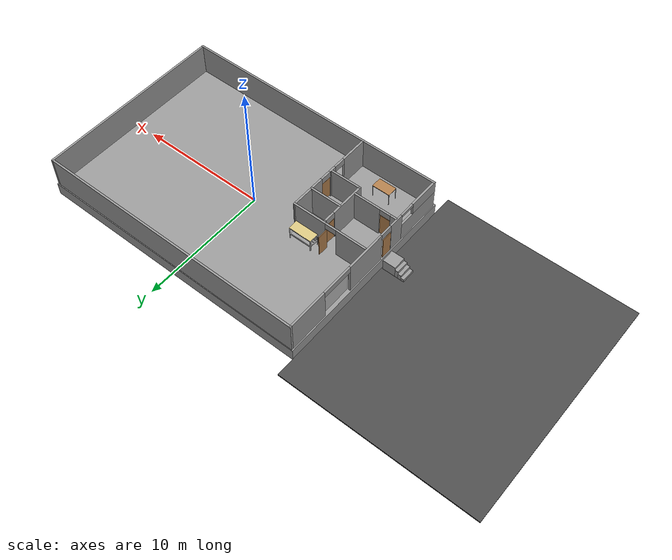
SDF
<sdf version="1.6">
 <world name="default">
  <gravity>0 0 -9.8</gravity>
  <atmosphere type="adiabatic"/>
  <physics name="default_physics" default="0" type="ode">
   <max_step_size>0.001</max_step_size>
   <real_time_factor>1</real_time_factor>
   <real_time_update_rate>1000</real_time_update_rate>
  </physics>
  <scene><ambient>0.4 0.4 0.4 1</ambient><background>0.7 0.7 0.7 1</background><shadows>0</shadows></scene>
  <model name="Small Warehouse">
   <pose>0.283 0.657 0.95 0 -0 0</pose>
   <link name="Wall_0">
    <collision name="Wall_0_Collision">
     <geometry><box><size>21.25 0.15 2.5</size></box></geometry>
     <pose>0 0 1.25 0 -0 0</pose>
    </collision>
    <visual name="Wall_0_Visual">
     <pose>0 0 1.25 0 -0 0</pose>
     <geometry><box><size>21.25 0.15 2.5</size></box></geometry>
     <material>
      <script><uri>file://media/materials/scripts/gazebo.material</uri><name>Gazebo/Grey</name></script>
      <ambient>1 1 1 1</ambient>
     </material>
    </visual>
    <pose>0 7.3 0 0 -0 3.14159</pose>
   </link>
   <link name="Wall_1">
    <pose>-10.55 0 0 0 0 -1.5708</pose>
    <visual name="Wall_1_Visual_0">
     <pose>-5.75457 0 1.25 0 -0 0</pose>
     <geometry><box><size>3.24086 0.15 2.5</size></box></geometry>
     <material>
      <script><uri>file://media/materials/scripts/gazebo.material</uri><name>Gazebo/Grey</name></script>
      <ambient>1 1 1 1</ambient>
     </material>
    </visual>
    <collision name="Wall_1_Collision_0">
     <geometry><box><size>3.24086 0.15 2.5</size></box></geometry>
     <pose>-5.75457 0 1.25 0 -0 0</pose>
    </collision>
    <visual name="Wall_1_Visual_1">
     <pose>-0.038492 0 1.25 0 -0 0</pose>
     <geometry><box><size>3.1913 0.15 2.5</size></box></geometry>
     <material>
      <script><uri>file://media/materials/scripts/gazebo.material</uri><name>Gazebo/Grey</name></script>
      <ambient>1 1 1 1</ambient>
     </material>
    </visual>
    <collision name="Wall_1_Collision_1">
     <geometry><box><size>3.1913 0.15 2.5</size></box></geometry>
     <pose>-0.038492 0 1.25 0 -0 0</pose>
    </collision>
    <visual name="Wall_1_Visual_2">
     <pose>3.12746 0 1.25 0 -0 0</pose>
     <geometry><box><size>1.1406 0.15 2.5</size></box></geometry>
     <material>
      <script><uri>file://media/materials/scripts/gazebo.material</uri><name>Gazebo/Grey</name></script>
      <ambient>1 1 1 1</ambient>
     </material>
    </visual>
    <collision name="Wall_1_Collision_2">
     <geometry><box><size>1.1406 0.15 2.5</size></box></geometry>
     <pose>3.12746 0 1.25 0 -0 0</pose>
    </collision>
    <visual name="Wall_1_Visual_3">
     <pose>5.53638 0 0.75 0 -0 0</pose>
     <geometry><box><size>3.67724 0.15 1.5</size></box></geometry>
     <material>
      <script><uri>file://media/materials/scripts/gazebo.material</uri><name>Gazebo/Grey</name></script>
      <ambient>1 1 1 1</ambient>
     </material>
    </visual>
    <collision name="Wall_1_Collision_3">
     <geometry><box><size>3.67724 0.15 1.5</size></box></geometry>
     <pose>5.53638 0 0.75 0 -0 0</pose>
    </collision>
    <visual name="Wall_1_Visual_4">
     <pose>6.13638 0 2 0 -0 0</pose>
     <geometry><box><size>2.47724 0.15 1</size></box></geometry>
     <material>
      <script><uri>file://media/materials/scripts/gazebo.material</uri><name>Gazebo/Grey</name></script>
      <ambient>1 1 1 1</ambient>
     </material>
    </visual>
    <collision name="Wall_1_Collision_4">
     <geometry><box><size>2.47724 0.15 1</size></box></geometry>
     <pose>6.13638 0 2 0 -0 0</pose>
    </collision>
    <visual name="Wall_1_Visual_5">
     <pose>-2.88414 0 2.25 0 -0 0</pose>
     <geometry><box><size>2.5 0.15 0.5</size></box></geometry>
     <material>
      <script><uri>file://media/materials/scripts/gazebo.material</uri><name>Gazebo/Grey</name></script>
      <ambient>1 1 1 1</ambient>
     </material>
    </visual>
    <collision name="Wall_1_Collision_5">
     <geometry><box><size>2.5 0.15 0.5</size></box></geometry>
     <pose>-2.88414 0 2.25 0 -0 0</pose>
    </collision>
    <visual name="Wall_1_Visual_6">
     <pose>2.05716 0 2.25 0 -0 0</pose>
     <geometry><box><size>1 0.15 0.5</size></box></geometry>
     <material>
      <script><uri>file://media/materials/scripts/gazebo.material</uri><name>Gazebo/Grey</name></script>
      <ambient>1 1 1 1</ambient>
     </material>
    </visual>
    <collision name="Wall_1_Collision_6">
     <geometry><box><size>1 0.15 0.5</size></box></geometry>
     <pose>2.05716 0 2.25 0 -0 0</pose>
    </collision>
    <visual name="Wall_1_Visual_7">
     <pose>4.29776 0 2.4 0 -0 0</pose>
     <geometry><box><size>1.2 0.15 0.2</size></box></geometry>
     <material>
      <script><uri>file://media/materials/scripts/gazebo.material</uri><name>Gazebo/Grey</name></script>
      <ambient>1 1 1 1</ambient>
     </material>
    </visual>
    <collision name="Wall_1_Collision_7">
     <geometry><box><size>1.2 0.15 0.2</size></box></geometry>
     <pose>4.29776 0 2.4 0 -0 0</pose>
    </collision>
   </link>
   <link name="Wall_2">
    <collision name="Wall_2_Collision">
     <geometry><box><size>21.25 0.15 2.5</size></box></geometry>
     <pose>0 0 1.25 0 -0 0</pose>
    </collision>
    <visual name="Wall_2_Visual">
     <pose>0 0 1.25 0 -0 0</pose>
     <geometry><box><size>21.25 0.15 2.5</size></box></geometry>
     <material>
      <script><uri>file://media/materials/scripts/gazebo.material</uri><name>Gazebo/Grey</name></script>
      <ambient>1 1 1 1</ambient>
     </material>
    </visual>
    <pose>0 -7.3 0 0 -0 0</pose>
   </link>
   <link name="Wall_22">
    <pose>-7.48562 -0.099249 0 0 0 -3.14158</pose>
    <visual name="Wall_22_Visual_0">
     <pose>-1.6525 0 1.25 0 -0 0</pose>
     <geometry><box><size>2.67098 0.15 2.5</size></box></geometry>
     <material>
      <script><uri>file://media/materials/scripts/gazebo.material</uri><name>Gazebo/Grey</name></script>
      <ambient>1 1 1 1</ambient>
     </material>
    </visual>
    <collision name="Wall_22_Collision_0">
     <geometry><box><size>2.67098 0.15 2.5</size></box></geometry>
     <pose>-1.6525 0 1.25 0 -0 0</pose>
    </collision>
    <visual name="Wall_22_Visual_1">
     <pose>1.78549 0 1.25 0 -0 0</pose>
     <geometry><box><size>2.40501 0.15 2.5</size></box></geometry>
     <material>
      <script><uri>file://media/materials/scripts/gazebo.material</uri><name>Gazebo/Grey</name></script>
      <ambient>1 1 1 1</ambient>
     </material>
    </visual>
    <collision name="Wall_22_Collision_1">
     <geometry><box><size>2.40501 0.15 2.5</size></box></geometry>
     <pose>1.78549 0 1.25 0 -0 0</pose>
    </collision>
    <visual name="Wall_22_Visual_2">
     <pose>0.132986 0 2.25 0 -0 0</pose>
     <geometry><box><size>0.9 0.15 0.5</size></box></geometry>
     <material>
      <script><uri>file://media/materials/scripts/gazebo.material</uri><name>Gazebo/Grey</name></script>
      <ambient>1 1 1 1</ambient>
     </material>
    </visual>
    <collision name="Wall_22_Collision_2">
     <geometry><box><size>0.9 0.15 0.5</size></box></geometry>
     <pose>0.132986 0 2.25 0 -0 0</pose>
    </collision>
   </link>
   <link name="Wall_26">
    <pose>-4.57263 -3.64921 0 0 0 -1.5708</pose>
    <visual name="Wall_26_Visual_0">
     <pose>-2.22824 0 1.25 0 -0 0</pose>
     <geometry><box><size>2.79352 0.15 2.5</size></box></geometry>
     <material>
      <script><uri>file://media/materials/scripts/gazebo.material</uri><name>Gazebo/Grey</name></script>
      <ambient>1 1 1 1</ambient>
     </material>
    </visual>
    <collision name="Wall_26_Collision_0">
     <geometry><box><size>2.79352 0.15 2.5</size></box></geometry>
     <pose>-2.22824 0 1.25 0 -0 0</pose>
    </collision>
    <visual name="Wall_26_Visual_1">
     <pose>0.30227 0 1.25 0 -0 0</pose>
     <geometry><box><size>0.5675 0.15 2.5</size></box></geometry>
     <material>
      <script><uri>file://media/materials/scripts/gazebo.material</uri><name>Gazebo/Grey</name></script>
      <ambient>1 1 1 1</ambient>
     </material>
    </visual>
    <collision name="Wall_26_Collision_1">
     <geometry><box><size>0.5675 0.15 2.5</size></box></geometry>
     <pose>0.30227 0 1.25 0 -0 0</pose>
    </collision>
    <visual name="Wall_26_Visual_2">
     <pose>2.55551 0 1.25 0 -0 0</pose>
     <geometry><box><size>2.13898 0.15 2.5</size></box></geometry>
     <material>
      <script><uri>file://media/materials/scripts/gazebo.material</uri><name>Gazebo/Grey</name></script>
      <ambient>1 1 1 1</ambient>
     </material>
    </visual>
    <collision name="Wall_26_Collision_2">
     <geometry><box><size>2.13898 0.15 2.5</size></box></geometry>
     <pose>2.55551 0 1.25 0 -0 0</pose>
    </collision>
    <visual name="Wall_26_Visual_3">
     <pose>-0.40648 0 2.25 0 -0 0</pose>
     <geometry><box><size>0.85 0.15 0.5</size></box></geometry>
     <material>
      <script><uri>file://media/materials/scripts/gazebo.material</uri><name>Gazebo/Grey</name></script>
      <ambient>1 1 1 1</ambient>
     </material>
    </visual>
    <collision name="Wall_26_Collision_3">
     <geometry><box><size>0.85 0.15 0.5</size></box></geometry>
     <pose>-0.40648 0 2.25 0 -0 0</pose>
    </collision>
    <visual name="Wall_26_Visual_4">
     <pose>1.03602 0 2.25 0 -0 0</pose>
     <geometry><box><size>0.9 0.15 0.5</size></box></geometry>
     <material>
      <script><uri>file://media/materials/scripts/gazebo.material</uri><name>Gazebo/Grey</name></script>
      <ambient>1 1 1 1</ambient>
     </material>
    </visual>
    <collision name="Wall_26_Collision_4">
     <geometry><box><size>0.9 0.15 0.5</size></box></geometry>
     <pose>1.03602 0 2.25 0 -0 0</pose>
    </collision>
   </link>
   <link name="Wall_35">
    <collision name="Wall_35_Collision">
     <geometry><box><size>2.5 0.15 2.5</size></box></geometry>
     <pose>0 0 1.25 0 -0 0</pose>
    </collision>
    <visual name="Wall_35_Visual">
     <pose>0 0 1.25 0 -0 0</pose>
     <geometry><box><size>2.5 0.15 2.5</size></box></geometry>
     <material>
      <script><uri>file://media/materials/scripts/gazebo.material</uri><name>Gazebo/Grey</name></script>
      <ambient>1 1 1 1</ambient>
     </material>
    </visual>
    <pose>-5.78333 -1.81261 0 0 -0 0</pose>
   </link>
   <link name="Wall_38">
    <collision name="Wall_38_Collision">
     <geometry><box><size>2.5 0.15 2.5</size></box></geometry>
     <pose>0 0 1.25 0 -0 0</pose>
    </collision>
    <visual name="Wall_38_Visual">
     <pose>0 0 1.25 0 -0 0</pose>
     <geometry><box><size>2.5 0.15 2.5</size></box></geometry>
     <material>
      <script><uri>file://media/materials/scripts/gazebo.material</uri><name>Gazebo/Grey</name></script>
      <ambient>1 1 1 1</ambient>
     </material>
    </visual>
    <pose>-5.84141 -3.8333 0 0 -0 0</pose>
   </link>
   <link name="Wall_4">
    <collision name="Wall_4_Collision">
     <geometry><box><size>14.75 0.15 2.5</size></box></geometry>
     <pose>0 0 1.25 0 -0 0</pose>
    </collision>
    <visual name="Wall_4_Visual">
     <pose>0 0 1.25 0 -0 0</pose>
     <geometry><box><size>14.75 0.15 2.5</size></box></geometry>
     <material>
      <script><uri>file://media/materials/scripts/gazebo.material</uri><name>Gazebo/Grey</name></script>
      <ambient>1 1 1 1</ambient>
     </material>
    </visual>
    <pose>10.55 0 0 0 -0 1.5708</pose>
   </link>
   <link name="Wall_40">
    <pose>-7.01642 -2.0333 0 0 -0 1.5708</pose>
    <visual name="Wall_40_Visual_0">
     <pose>-0.477182 0 1.25 0 -0 0</pose>
     <geometry><box><size>2.79563 0.15 2.5</size></box></geometry>
     <material>
      <script><uri>file://media/materials/scripts/gazebo.material</uri><name>Gazebo/Grey</name></script>
      <ambient>1 1 1 1</ambient>
     </material>
    </visual>
    <collision name="Wall_40_Collision_0">
     <geometry><box><size>2.79563 0.15 2.5</size></box></geometry>
     <pose>-0.477182 0 1.25 0 -0 0</pose>
    </collision>
    <visual name="Wall_40_Visual_1">
     <pose>1.82282 0 1.25 0 -0 0</pose>
     <geometry><box><size>0.104365 0.15 2.5</size></box></geometry>
     <material>
      <script><uri>file://media/materials/scripts/gazebo.material</uri><name>Gazebo/Grey</name></script>
      <ambient>1 1 1 1</ambient>
     </material>
    </visual>
    <collision name="Wall_40_Collision_1">
     <geometry><box><size>0.104365 0.15 2.5</size></box></geometry>
     <pose>1.82282 0 1.25 0 -0 0</pose>
    </collision>
    <visual name="Wall_40_Visual_2">
     <pose>1.34563 0 2.25 0 -0 0</pose>
     <geometry><box><size>0.85 0.15 0.5</size></box></geometry>
     <material>
      <script><uri>file://media/materials/scripts/gazebo.material</uri><name>Gazebo/Grey</name></script>
      <ambient>1 1 1 1</ambient>
     </material>
    </visual>
    <collision name="Wall_40_Collision_2">
     <geometry><box><size>0.85 0.15 0.5</size></box></geometry>
     <pose>1.34563 0 2.25 0 -0 0</pose>
    </collision>
   </link>
   <link name="Wall_42">
    <pose>-8.79502 -3.24499 0 0 -0 0</pose>
    <visual name="Wall_42_Visual_0">
     <pose>-1.49076 0 1.25 0 -0 0</pose>
     <geometry><box><size>0.518479 0.15 2.5</size></box></geometry>
     <material>
      <script><uri>file://media/materials/scripts/gazebo.material</uri><name>Gazebo/Grey</name></script>
      <ambient>1 1 1 1</ambient>
     </material>
    </visual>
    <collision name="Wall_42_Collision_0">
     <geometry><box><size>0.518479 0.15 2.5</size></box></geometry>
     <pose>-1.49076 0 1.25 0 -0 0</pose>
    </collision>
    <visual name="Wall_42_Visual_1">
     <pose>0.684239 0 1.25 0 -0 0</pose>
     <geometry><box><size>2.13152 0.15 2.5</size></box></geometry>
     <material>
      <script><uri>file://media/materials/scripts/gazebo.material</uri><name>Gazebo/Grey</name></script>
      <ambient>1 1 1 1</ambient>
     </material>
    </visual>
    <collision name="Wall_42_Collision_1">
     <geometry><box><size>2.13152 0.15 2.5</size></box></geometry>
     <pose>0.684239 0 1.25 0 -0 0</pose>
    </collision>
    <visual name="Wall_42_Visual_2">
     <pose>-0.806521 0 2.25 0 -0 0</pose>
     <geometry><box><size>0.85 0.15 0.5</size></box></geometry>
     <material>
      <script><uri>file://media/materials/scripts/gazebo.material</uri><name>Gazebo/Grey</name></script>
      <ambient>1 1 1 1</ambient>
     </material>
    </visual>
    <collision name="Wall_42_Collision_2">
     <geometry><box><size>0.85 0.15 0.5</size></box></geometry>
     <pose>-0.806521 0 2.25 0 -0 0</pose>
    </collision>
   </link>
   <static>1</static>
  </model>
  <model name="asphalt_plane">
   <static>1</static>
   <link name="link">
    <collision name="collision"><geometry><box><size>15.0 18.0 0.1</size></box></geometry></collision>
    <visual name="visual">
     <cast_shadows>0</cast_shadows>
     <geometry><box><size>15.0 18.0 0.1</size></box></geometry>
     <material>
      <script>
       <uri>model://asphalt_plane/materials/scripts</uri>
       <uri>model://asphalt_plane/materials/textures</uri>
       <name>vrc/asphalt</name>
      </script>
     </material>
    </visual>
    <gravity>0</gravity>
   </link>
   <pose>-17.93 0.5 0 0 0 0</pose>
  </model>
  <light name="user_directional_light_0" type="directional">
   <pose>17.2332 3.09061 1 0 -0 0</pose>
   <diffuse>0.5 0.5 0.5 1</diffuse>
   <specular>0.1 0.1 0.1 1</specular>
   <direction>0.1 0.1 -0.9</direction>
   <attenuation>
    <range>20</range>
    <constant>0.5</constant>
    <linear>0.01</linear>
    <quadratic>0.001</quadratic>
   </attenuation>
  </light>
  <light name="user_directional_light_1" type="directional">
   <pose>14.9755 -9.82871 1 0 -0 0</pose>
   <diffuse>0.5 0.5 0.5 1</diffuse>
   <specular>0.1 0.1 0.1 1</specular>
   <direction>0.1 0.1 -0.9</direction>
   <attenuation>
    <range>20</range>
    <constant>0.5</constant>
    <linear>0.01</linear>
    <quadratic>0.001</quadratic>
   </attenuation>
  </light>
  <model name="landing">
   <static>1</static>
   <pose>-11 -1.43 0.5 0 -0 0</pose>
   <link name="link">
    <collision name="collision"><geometry><box><size>1 1 0.9</size></box></geometry></collision>
    <visual name="visual">
     <geometry><box><size>1 1 0.9</size></box></geometry>
     <material>
      <script><name>Gazebo/Grey</name><uri>file://media/materials/scripts/gazebo.material</uri></script>
     </material>
    </visual>
    <gravity>0</gravity>
   </link>
  </model>
  <model name="tall_step">
   <static>1</static>
   <pose>-11.625 -1.43 0.3875 0 -0 0</pose>
   <link name="link">
    <collision name="collision"><geometry><box><size>0.25 1 0.675</size></box></geometry></collision>
    <visual name="visual">
     <geometry><box><size>0.25 1 0.675</size></box></geometry>
     <material>
      <script><name>Gazebo/Grey</name><uri>file://media/materials/scripts/gazebo.material</uri></script>
     </material>
    </visual>
    <gravity>0</gravity>
   </link>
  </model>
  <model name="mid_step">
   <static>1</static>
   <pose>-11.875 -1.43 0.275 0 -0 0</pose>
   <link name="link">
    <collision name="collision"><geometry><box><size>0.25 1 0.45</size></box></geometry></collision>
    <visual name="visual">
     <geometry><box><size>0.25 1 0.45</size></box></geometry>
     <material>
      <script><name>Gazebo/Grey</name><uri>file://media/materials/scripts/gazebo.material</uri></script>
     </material>
    </visual>
    <gravity>0</gravity>
   </link>
  </model>
  <model name="short_step">
   <static>1</static>
   <pose>-12.125 -1.43 0.1625 0 -0 0</pose>
   <link name="link">
    <collision name="collision"><geometry><box><size>0.25 1 0.225</size></box></geometry></collision>
    <visual name="visual">
     <geometry><box><size>0.25 1 0.225</size></box></geometry>
     <material>
      <script><name>Gazebo/Grey</name><uri>file://media/materials/scripts/gazebo.material</uri></script>
     </material>
    </visual>
    <gravity>0</gravity>
   </link>
  </model>
  <model name="foundation">
   <link name="link">
    <pose>6.87194 9.07725 -0.026738 0 -0 0</pose>
    <visual name="visual">
     <geometry><box><size>21.4 15 1</size></box></geometry>
     <material>
      <script><name>Gazebo/Grey</name><uri>file://media/materials/scripts/gazebo.material</uri></script>
      <ambient>0.3 0.3 0.3 1</ambient>
      <diffuse>0.7 0.7 0.7 1</diffuse>
      <specular>0.01 0.01 0.01 1</specular>
      <emissive>0 0 0 1</emissive>
      <shader type="vertex"><normal_map>__default__</normal_map></shader>
     </material>
    </visual>
    <collision name="collision">
     <geometry><box><size>21.4 15 1</size></box></geometry>
     <surface>
      <friction>
       <ode><mu>1</mu><mu2>1</mu2><fdir1>0 0 0</fdir1><slip1>0</slip1><slip2>0</slip2></ode>
       <torsional>
        <coefficient>1</coefficient>
        <patch_radius>0</patch_radius>
        <surface_radius>0</surface_radius>
        <use_patch_radius>1</use_patch_radius>
        <ode><slip>0</slip></ode>
       </torsional>
      </friction>
      <bounce><restitution_coefficient>0</restitution_coefficient><threshold>1e+06</threshold></bounce>
      <contact>
       <collide_without_contact>0</collide_without_contact>
       <collide_without_contact_bitmask>1</collide_without_contact_bitmask>
       <collide_bitmask>1</collide_bitmask>
       <ode>
        <soft_cfm>0</soft_cfm>
        <soft_erp>0.2</soft_erp>
        <kp>1e+13</kp>
        <kd>1</kd>
        <max_vel>0.01</max_vel>
        <min_depth>0</min_depth>
       </ode>
       <bullet>
        <split_impulse>1</split_impulse>
        <split_impulse_penetration_threshold>-0.01</split_impulse_penetration_threshold>
        <soft_cfm>0</soft_cfm>
        <soft_erp>0.2</soft_erp>
        <kp>1e+13</kp>
        <kd>1</kd>
       </bullet>
      </contact>
     </surface>
    </collision>
    <gravity>0</gravity>
   </link>
   <static>1</static>
   <pose>-6.57046 -8.49807 0.484793 -6e-06 -0.003898 0.001481</pose>
  </model>
  <model name="table">
   <static>0</static>
   <link name="link">
    <collision name="surface">
     <pose>0 0 1 0 -0 0</pose>
     <geometry><box><size>1.5 0.8 0.03</size></box></geometry>
     <surface><friction><ode><mu>0.6</mu><mu2>0.6</mu2></ode></friction></surface>
    </collision>
    <visual name="visual1">
     <pose>0 0 1 0 -0 0</pose>
     <geometry><box><size>1.4 0.8 0.04</size></box></geometry>
     <material>
      <script><uri>file://media/materials/scripts/gazebo.material</uri><name>Gazebo/Wood</name></script>
     </material>
    </visual>
    <collision name="front_left_leg">
     <pose>0.68 0.38 0.5 0 -0 0</pose>
     <geometry><cylinder><radius>0.02</radius><length>1</length></cylinder></geometry>
    </collision>
    <visual name="front_left_leg">
     <pose>0.68 0.38 0.5 0 -0 0</pose>
     <geometry><cylinder><radius>0.02</radius><length>1</length></cylinder></geometry>
     <material>
      <script><uri>file://media/materials/scripts/gazebo.material</uri><name>Gazebo/Grey</name></script>
     </material>
    </visual>
    <collision name="front_right_leg">
     <pose>0.68 -0.38 0.5 0 -0 0</pose>
     <geometry><cylinder><radius>0.02</radius><length>1</length></cylinder></geometry>
    </collision>
    <visual name="front_right_leg">
     <pose>0.68 -0.38 0.5 0 -0 0</pose>
     <geometry><cylinder><radius>0.02</radius><length>1</length></cylinder></geometry>
     <material>
      <script><uri>file://media/materials/scripts/gazebo.material</uri><name>Gazebo/Grey</name></script>
     </material>
    </visual>
    <collision name="back_right_leg">
     <pose>-0.68 -0.38 0.5 0 -0 0</pose>
     <geometry><cylinder><radius>0.02</radius><length>1</length></cylinder></geometry>
    </collision>
    <visual name="back_right_leg">
     <pose>-0.68 -0.38 0.5 0 -0 0</pose>
     <geometry><cylinder><radius>0.02</radius><length>1</length></cylinder></geometry>
     <material>
      <script><uri>file://media/materials/scripts/gazebo.material</uri><name>Gazebo/Grey</name></script>
     </material>
    </visual>
    <collision name="back_left_leg">
     <pose>-0.68 0.38 0.5 0 -0 0</pose>
     <geometry><cylinder><radius>0.02</radius><length>1</length></cylinder></geometry>
    </collision>
    <visual name="back_left_leg">
     <pose>-0.68 0.38 0.5 0 -0 0</pose>
     <geometry><cylinder><radius>0.02</radius><length>1</length></cylinder></geometry>
     <material>
      <script><uri>file://media/materials/scripts/gazebo.material</uri><name>Gazebo/Grey</name></script>
     </material>
    </visual>
    <inertial>
     <inertia><ixx>1</ixx><ixy>0</ixy><ixz>0</ixz><iyy>1</iyy><iyz>0</iyz><izz>1</izz></inertia>
     <mass>1</mass>
    </inertial>
   </link>
   <pose>-7.25 -5.25 1 0 -0 0</pose>
  </model>
  <include><name>Bench</name><uri>model://bench</uri><pose>-5.45 1.12 1.94 0 -0 0</pose></include>
  <include>
   <name>Back Office Door</name>
   <uri>model://simpler_door</uri>
   <pose>-4.65 -3.63 0.95 0 0 0</pose>
  </include>
  <include>
   <name>Roller Door</name>
   <uri>model://roller_door</uri>
   <pose>-10.1 3.55 0.95 0 0 1.5707</pose>
  </include>
  <include>
   <name>Main Door</name>
   <uri>model://simpler_door</uri>
   <pose>-10.35 -1.43 0.95 0 0 -1.5707</pose>
  </include>
  <include>
   <name>Office Bathroom Door</name>
   <uri>model://simpler_door_z_minus</uri>
   <pose>-6.77 -0.02 .95 0 0 -1.5707</pose>
  </include>
  <include>
   <name>Front Office Door</name>
   <uri>model://simpler_door_z_minus</uri>
   <pose>-9.33 -2.58 0.95 0 0 -3.1415</pose>
  </include>
  <include>
   <name>Warehouse Bathroom Door</name>
   <uri>model://simpler_door_z_minus</uri>
   <pose>-4.29 -2.62 0.95 0 0 -1.5707</pose>
  </include>
  <include>
   <name>Reception Door</name>
   <uri>model://simpler_door</uri>
   <pose>-7 1 0.95 0 0 -1.57070</pose>
  </include>
 </world>
</sdf>

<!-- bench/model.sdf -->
<sdf version="1.5">
  <model name="bench">
    <link name="link">
      <pose>0 0 0 0 0 0</pose>
      <inertial>
        <mass>20.0</mass>
        <inertia>
          <ixx>2.43</ixx>
          <ixy>0</ixy>
          <ixz>0</ixz>
          <iyy>1.10</iyy>
          <iyz>0</iyz>
          <izz>3.47</izz>
        </inertia>
      </inertial>
      <collision name="collision">
        <pose>0 0 0.05 0 0 0</pose>
        <geometry>
          <mesh>
            <uri>model://bench/meshes/bench.dae</uri>
            <scale>1 1 1</scale>
          </mesh>
        </geometry>
      </collision>
      <visual name="visual">
        <pose>0 0 0.05 0 0 0</pose>
        <geometry>
          <mesh>
            <uri>model://bench/meshes/bench.dae</uri>
            <scale>1 1 1</scale>
          </mesh>
        </geometry>
      </visual>
    </link>
  </model>
</sdf>

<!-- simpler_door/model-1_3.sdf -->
<sdf version="1.3">
    <model name="simpler_door">
        <link name="door">
            <inertial>
                <pose>0 0 1.0 0 0 0</pose>
                <inertia>
                    <ixx>2.7</ixx>
                    <ixy>0</ixy>
                    <ixz>0</ixz>
                    <iyy>3.23</iyy>
                    <iyz>0</iyz>
                    <izz>0.53</izz>
                </inertia>
                <mass>10.0</mass>
            </inertial>
            <collision name="door_geom">
                <pose>0 0 1.0 0 0 0</pose>
                <geometry>
                    <box>
                        <size>0.8 0.05 1.8</size>
                    </box>
                </geometry>
            </collision>
            <visual name="door_geom_visual">
                <pose>0 0 1.0 0 0 0</pose>
                <geometry>
                    <box>
                        <size>0.8 0.05 1.8</size>
                    </box>
                </geometry>
                <material>
                    <script>
                        <uri>file://media/materials/scripts/gazebo.material</uri>
                        <name>Gazebo/Wood</name>
                    </script>
                </material>
            </visual>
        </link>

    <joint name="hinge" type="revolute">
      <parent>world</parent>
      <child>door</child>
      <pose>0.4 0.025 0 0 0 0</pose>
      <axis>
        <dynamics>
            <damping>0.3</damping>
        </dynamics>
        <limit>
          <lower>0</lower>
          <upper>1.5707</upper>
        </limit>
        <xyz>0 0 1</xyz>
      </axis>
    </joint>

    </model>
</sdf>

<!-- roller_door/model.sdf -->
<sdf version="1.3">
    <model name="roller_door">
        <link name="door">
            <gravity>0</gravity>
            <inertial>
                <pose>0 0 0.9 0 0 0</pose>
                <inertia>
                    <ixx>2.7</ixx>
                    <ixy>0</ixy>
                    <ixz>0</ixz>
                    <iyy>3.23</iyy>
                    <iyz>0</iyz>
                    <izz>0.53</izz>
                </inertia>
                <mass>10.0</mass>
            </inertial>
            <collision name="door_geom">
                <pose>0 0 1.0 0 0 0</pose>
                <geometry>
                    <box>
                        <size>2.5 0.05 2.0</size>
                    </box>
                </geometry>
            </collision>
            <visual name="door_geom_visual">
                <pose>0 0 1.0 0 0 0</pose>
                <geometry>
                    <box>
                        <size>2.5 0.05 2.0</size>
                    </box>
                </geometry>
                <material>
                    <script>
                        <uri>file://media/materials/scripts/gazebo.material</uri>
                        <name>Gazebo/Steps</name>
                    </script>
                </material>
            </visual>
        </link>

    <joint name="rail" type="prismatic">
      <parent>world</parent>
      <child>door</child>
      <pose>0 0 0 0 0 0</pose>
      <axis>
        <dynamics>
            <damping>0.3</damping>
        </dynamics>
        <limit>
          <lower>0</lower>
          <upper>1.8</upper>
        </limit>
        <xyz>0 0 1</xyz>
      </axis>
    </joint>

    </model>
</sdf>

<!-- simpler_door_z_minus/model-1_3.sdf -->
<sdf version="1.3">
    <model name="simpler_door_z_minus">
        <link name="door">
            <inertial>
                <pose>0 0 1.0 0 0 0</pose>
                <inertia>
                    <ixx>2.7</ixx>
                    <ixy>0</ixy>
                    <ixz>0</ixz>
                    <iyy>3.23</iyy>
                    <iyz>0</iyz>
                    <izz>0.53</izz>
                </inertia>
                <mass>10.0</mass>
            </inertial>
            <collision name="door_geom">
                <pose>0 0 1.0 0 0 0</pose>
                <geometry>
                    <box>
                        <size>0.8 0.05 1.8</size>
                    </box>
                </geometry>
            </collision>
            <visual name="door_geom_visual">
                <pose>0 0 1.0 0 0 0</pose>
                <geometry>
                    <box>
                        <size>0.8 0.05 1.8</size>
                    </box>
                </geometry>
                <material>
                    <script>
                        <uri>file://media/materials/scripts/gazebo.material</uri>
                        <name>Gazebo/Wood</name>
                    </script>
                </material>
            </visual>
        </link>

    <joint name="hinge" type="revolute">
      <parent>world</parent>
      <child>door</child>
      <pose>-0.4 0.025 0 0 0 0</pose>
      <axis>
        <dynamics>
            <damping>0.3</damping>
        </dynamics>
        <limit>
          <lower>0</lower>
          <upper>1.5707</upper>
        </limit>
        <xyz>0 0 1</xyz>
      </axis>
    </joint>

    </model>
</sdf>
